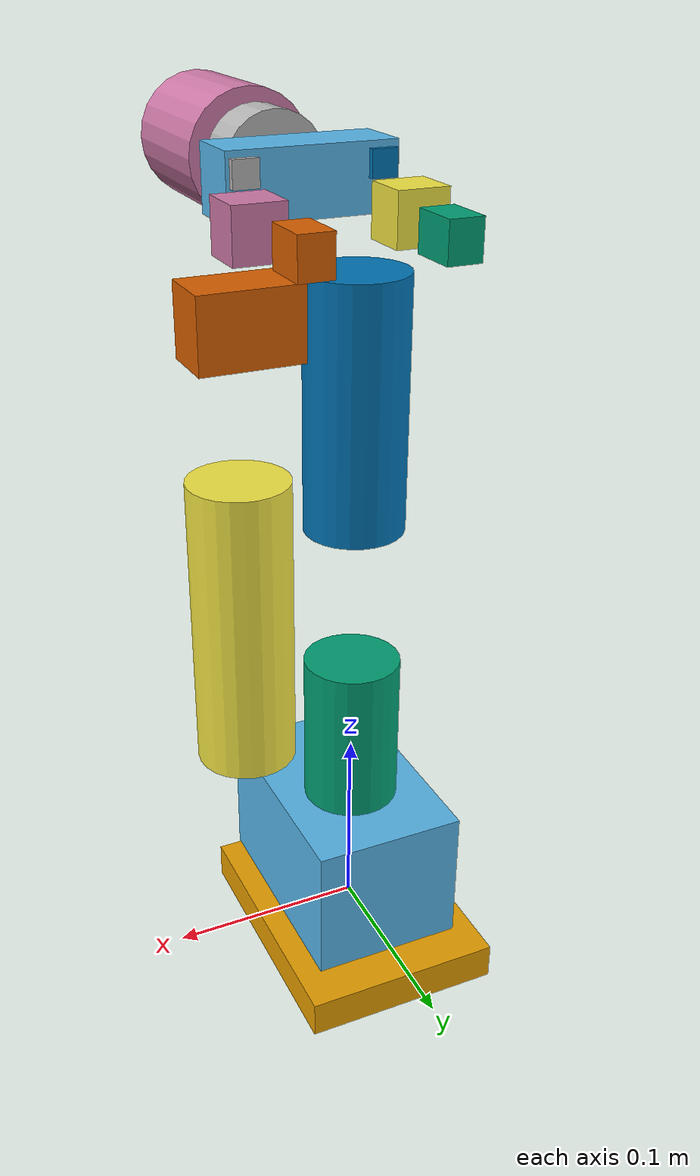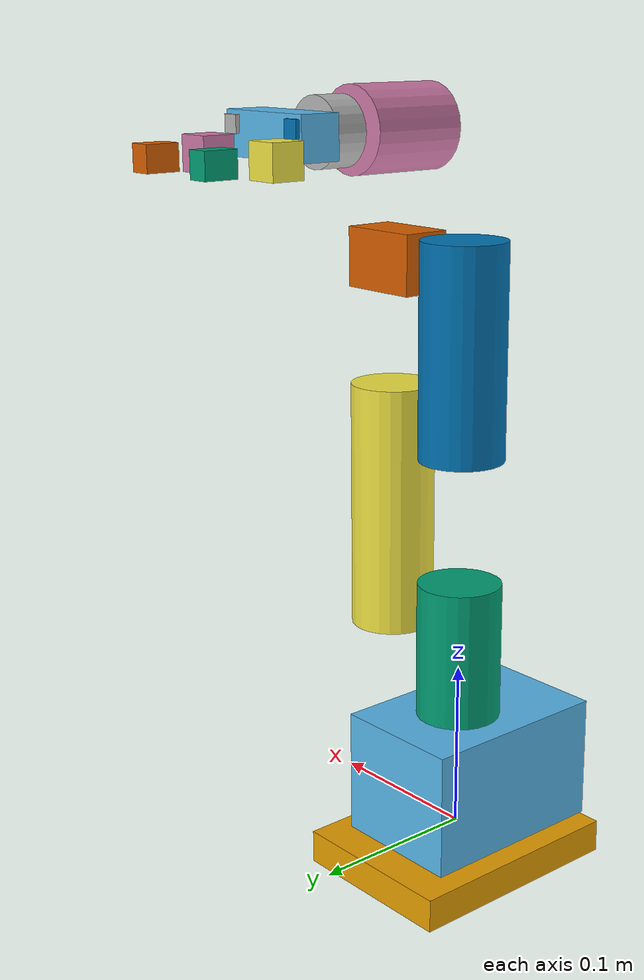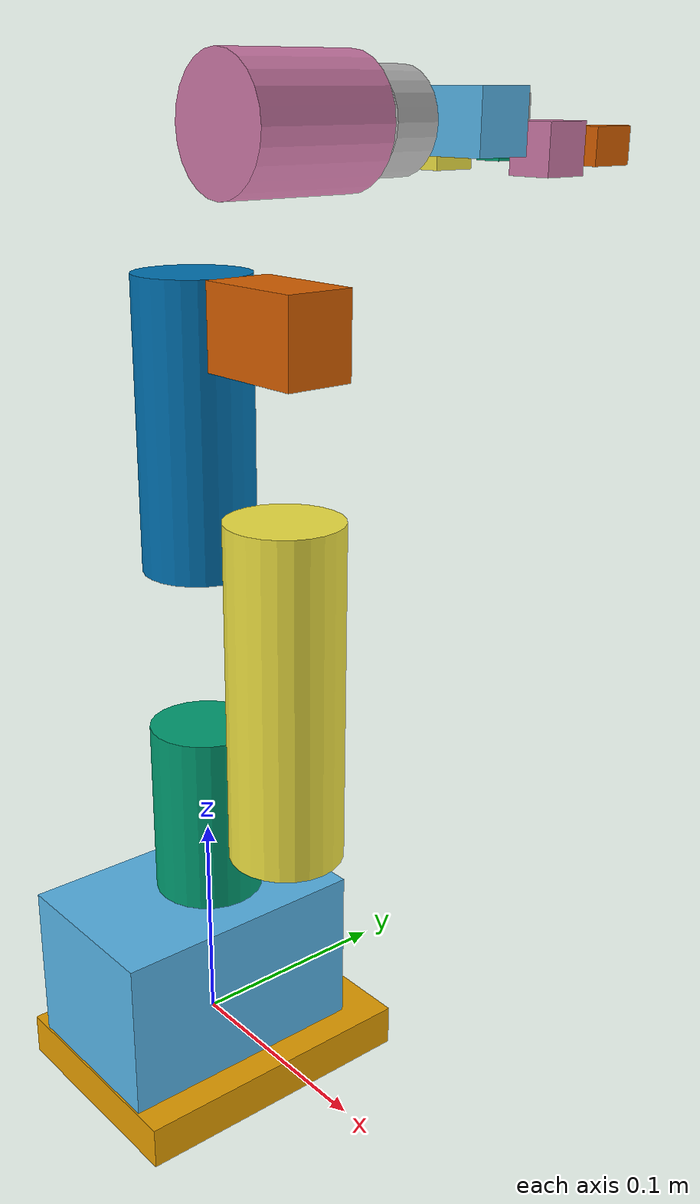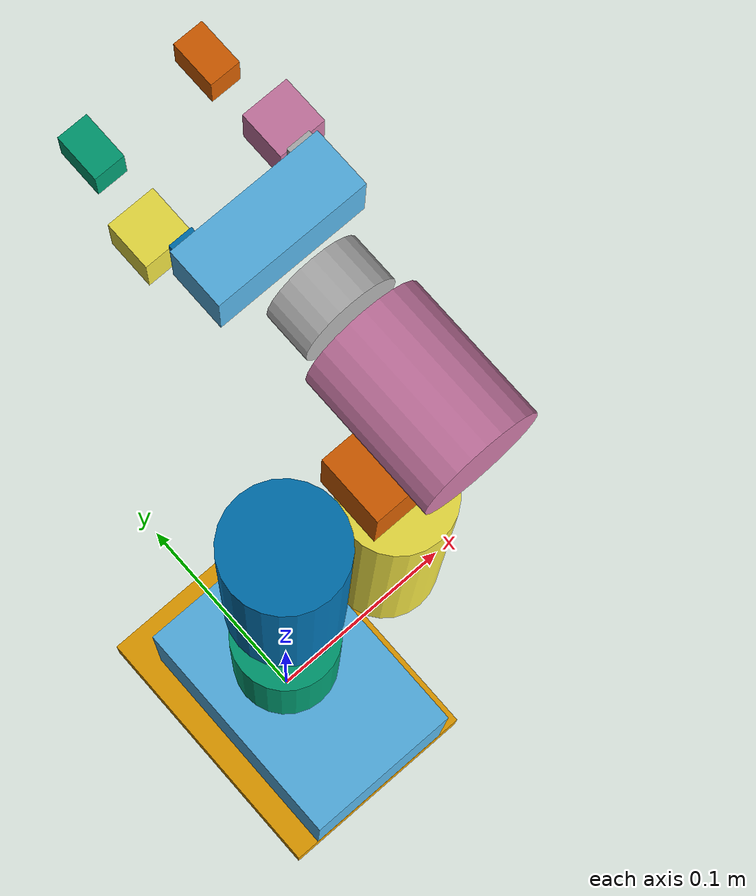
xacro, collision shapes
<?xml version="1.0"?>
<robot name="my_robot" xmlns:xacro="http://www.ros.org/wiki/xacro">

    <xacro:include filename="common_properties.xacro"/>
    <xacro:include filename="arm.xacro"/>
    <xacro:include filename="gripper.xacro"/>
    <xacro:include filename="my_robot.ros2_control.xacro"/>
    <joint name="gripper_base_joint" type="fixed">
        <parent link="tool_link"/>
        <child link="gripper_base_link"/>
        <origin xyz="0 0 0.02" rpy="${pi/2} 0 0"/>
    </joint>
</robot>

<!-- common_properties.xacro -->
<robot xmlns:xacro="http://www.ros.org/wiki/xacro">

    <material name="grey">
        <color rgba="0.5 0.5 0.5 1" />
    </material>
    <material name="blue">
        <color rgba="0 0 0.5 1"/>
    </material>
    <material name="dark_green">
        <color rgba="0 0.4 0 1"/>
    </material>

    <material name="light_green">
        <color rgba="0 0.6 0 1"/>
    </material>
</robot>

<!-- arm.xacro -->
<robot xmlns:xacro="http://www.ros.org/wiki/xacro">

    <link name="pre_base_link">
        <visual>
                <geometry>
                    <mesh filename="file://$(find my_robot_description)/meshes/g_shape_base_v2_0/visual/base_link.dae"/>
                </geometry>
                <origin xyz="0.0 0 -0.03" rpy="0 0 ${pi/2}"/>
            </visual>
            <collision>
                <geometry>
                    <box size="0.105 0.14 0.02"/>
                </geometry>
                <origin xyz="0.0 0.0 -0.015" rpy="0 0 0"/>
            </collision>
    </link>
    <link name="base_link">
        <visual>
        <geometry>
          <mesh filename="file://$(find my_robot_description)/meshes/mycobot_280/visual/link1.dae"/>
        </geometry>
        <origin xyz="0.0 0 0" rpy="0 0 ${-pi/2}"/>
      </visual>
      <collision>
        <geometry>
          <box size="0.08 0.12 0.075"/>
        </geometry>
        <origin xyz="0.0 -0.01 0.034" rpy="0 0 0"/>
      </collision>
    </link>

    <link name="shoulder_link">
        <visual>
        <geometry>
          <mesh filename="file://$(find my_robot_description)/meshes/mycobot_280/visual/link2.dae"/>
        </geometry>
        <origin xyz="0.0 0 -0.06096" rpy="0 0 ${-pi/2}"/>
      </visual>
      <collision>
        <geometry>
          <cylinder radius="0.025" length="0.085"/>
        </geometry>
        <origin xyz="0.0 0 -0.02" rpy="0 0 ${-pi/2}"/>
      </collision>
    </link>

    <link name="arm_link">
        <visual>
        <geometry>
          <mesh filename="file://$(find my_robot_description)/meshes/mycobot_280/visual/link3.dae"/>
        </geometry>
        <origin xyz="0.0 0 0.03256" rpy="0 ${-pi/2} 0"/>
      </visual>
      <collision>
        <geometry>
          <cylinder radius="0.025" length="0.15"/>
        </geometry>
        <origin xyz="-0.058 0 0.059" rpy="0 ${-pi/2} 0"/>
      </collision>
    </link>

    <link name="elbow_link">
        <visual>
        <geometry>
          <mesh filename="file://$(find my_robot_description)/meshes/mycobot_280/visual/link4.dae"/>
        </geometry>
        <origin xyz="0.0 0 0.03056" rpy="0 ${-pi/2} 0"/>
      </visual>
      <collision>
        <geometry>
          <cylinder radius="0.025" length="0.125"/>
        </geometry>
        <origin xyz="-0.05 0 0.0" rpy="0 ${-pi/2} 0"/>
      </collision>
    </link>

    <link name="forearm_link">
        <visual>
        <geometry>
          <mesh filename="file://$(find my_robot_description)/meshes/mycobot_280/visual/link5.dae"/>
        </geometry>
        <origin xyz="0.0 0 -0.03356" rpy="${-pi/2} 0 0"/>
      </visual>
      <collision>
        <geometry>
          <box size="0.03 0.035 0.05"/>
        </geometry>
        <origin xyz="0.0 0 -0.005" rpy="0 0.0 0"/>
      </collision>
    </link>

    <link name="wrist_link">
        <visual>
        <geometry>
          <mesh filename="file://$(find my_robot_description)/meshes/mycobot_280/visual/link6.dae"/>
        </geometry>
        <origin xyz="0 0.00 -0.038" rpy="0 0 0"/>
      </visual>
      <collision>
        <geometry>
          <cylinder radius="0.025" length="0.06"/>
        </geometry>
        <origin xyz="0 0.00 0.0" rpy="${-pi/2} 0 0"/>
      </collision>
    </link>

    <link name="hand_link">
        <visual>
        <geometry>
          <mesh filename="file://$(find my_robot_description)/meshes/mycobot_280/visual/link7.dae"/>
        </geometry>
        <origin xyz="0.0 0 -0.012" rpy="0 0 0"/>
      </visual>
      <collision>
        <geometry>
          <cylinder radius="0.02" length="0.02"/>
        </geometry>
        <origin xyz="0 0.00 0.0" rpy="0 0 0"/>
      </collision>
    </link>

    <link name="tool_link">
    </link>

    <joint name="joint0" type="fixed">
        <parent link="pre_base_link" />
        <child link="base_link"/>
        <origin xyz="0 0 0" rpy="0 0 0"/>
    </joint>

    <joint name="joint1" type="revolute">
        <parent link="base_link" />
        <child link="shoulder_link"/>
        <origin xyz="0 0 0.13156" rpy="0 0 ${pi/2}"/>
        <axis xyz="0 0 1" />
        <limit effort="1000.0" velocity="1.0" lower="-2.879793" upper="2.879793" />
    </joint>

    <joint name="joint2" type="revolute">
        <parent link="shoulder_link" />
        <child link="arm_link"/>
        <origin xyz="0 0 -0.001" rpy="0 ${pi/2} ${-pi/2}"/>
        <axis xyz="0 0 1" />
        <limit effort="1000.0" velocity="1.0" lower="-2.879793" upper="2.879793" />
    </joint>

    <joint name="joint3" type="revolute">
        <parent link="arm_link" />
        <child link="elbow_link"/>
        <origin xyz="-0.1104 0 0" rpy="0 0 0"/>
        <axis xyz="0 0 1" />
        <limit effort="1000.0" velocity="1.0" lower="-2.879793" upper="2.879793" />
    </joint>

    <joint name="joint4" type="revolute">
        <parent link="elbow_link" />
        <child link="forearm_link"/>
        <origin xyz="-0.096 0 0.06062" rpy="0 0 ${-pi/2}"/>
        <axis xyz="0 0 1" />
        <limit effort="1000.0" velocity="1.0" lower="-2.879793" upper="2.879793" />
    </joint>

    <joint name="joint5" type="revolute">
        <parent link="forearm_link" />
        <child link="wrist_link"/>
        <origin xyz="0 -0.07318 0" rpy="${pi/2} ${-pi/2} 0"/>
        <axis xyz="0 0 1" />
        <limit effort="1000.0" velocity="1.0" lower="-2.879793" upper="2.879793" />
    </joint>

    <joint name="joint6" type="revolute">
        <parent link="wrist_link" />
        <child link="hand_link"/>
        <origin xyz="0 0.0456 0" rpy="${-pi/2} 0 0"/>
        <axis xyz="0 0 1" />
        <limit effort="1000.0" velocity="1.0" lower="-3.05" upper="3.05" />
    </joint>

    <joint name="hand_tool_joint" type="fixed">
        <parent link="hand_link" />
        <child link="tool_link"/>
        <origin xyz="0 0 0.012" rpy="0 0 0"/>
    </joint>
</robot>

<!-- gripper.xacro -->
<robot xmlns:xacro="http://www.ros.org/wiki/xacro" >

    <link name="gripper_base_link">
        <visual>
        <geometry>
          <mesh filename="file://$(find my_robot_description)/meshes/adaptive_gripper/visual/gripper_base.dae"/>
        </geometry>
        <origin xyz="0.0 0.0 -0.012" rpy="0 0 0"/>
      </visual>
      <collision>
        <geometry>
          <box size="0.065 0.025 0.025"/>
        </geometry>
        <origin xyz="0.0 0.0 0.0" rpy="0 0 0"/>
      </collision>
    </link>

    <link name="gripper_left1">
      <visual>
        <geometry>
          <mesh filename="file://$(find my_robot_description)/meshes/adaptive_gripper/visual/gripper_left1.dae"/>
        </geometry>
        <origin xyz="0.039 -0.0133 -0.012" rpy="0 0 0"/>
      </visual>
      <collision>
        <geometry>
          <box size="0.013 0.02 0.015"/>
        </geometry>
        <origin xyz="0.013 0.042 -0.010" rpy="0 0 0"/>
      </collision>
    </link>

    <link name="gripper_left2">
      <visual>
        <geometry>
          <mesh filename="file://$(find my_robot_description)/meshes/adaptive_gripper/visual/gripper_left2.dae"/>
        </geometry>
        <origin xyz="0.005 -0.0195 -0.012" rpy="0 0 0"/>
      </visual>
      <collision>
        <geometry>
          <box size="0.02 0.02 0.02"/>
        </geometry>
        <origin xyz="-0.025 0.0 -0.010" rpy="0 0 0"/>
      </collision>
    </link>

    <link name="gripper_left3">
      <visual>
        <geometry>
          <mesh filename="file://$(find my_robot_description)/meshes/adaptive_gripper/visual/gripper_left3.dae"/>
        </geometry>
        <origin xyz="0.012 0.0025 -0.012" rpy="0 0 0"/>
      </visual>
      <collision>
        <geometry>
          <box size="0.01 0.01 0.01"/>
        </geometry>
        <origin xyz="-0.014 0.005 0.005" rpy="0 0 0"/>
      </collision>
    </link>

    <link name="gripper_right1">
      <visual>
        <geometry>
          <mesh filename="file://$(find my_robot_description)/meshes/adaptive_gripper/visual/gripper_right1.dae"/>
        </geometry>
        <origin xyz="-0.039 -0.0133 -0.012" rpy="0 0 0"/>
      </visual>
      <collision>
        <geometry>
          <box size="0.013 0.02 0.015"/>
        </geometry>
        <origin xyz="-0.013 0.042 -0.010" rpy="0 0 0"/>
      </collision>
    </link>

    <link name="gripper_right2">
      <visual>
        <geometry>
          <mesh filename="file://$(find my_robot_description)/meshes/adaptive_gripper/visual/gripper_right2.dae"/>
        </geometry>
        <origin xyz="-0.005 -0.0195 -0.012" rpy="0 0 0"/>
      </visual>
      <collision>
        <geometry>
          <box size="0.02 0.02 0.02"/>
        </geometry>
        <origin xyz="0.025 0.0 -0.010" rpy="0 0 0"/>
      </collision>
    </link>

    <link name="gripper_right3">
      <visual>
        <geometry>
          <mesh filename="file://$(find my_robot_description)/meshes/adaptive_gripper/visual/gripper_right3.dae"/>
        </geometry>
        <origin xyz="-0.012 0.0025 -0.012" rpy="0 0 0"/>
      </visual>
      <collision>
        <geometry>
          <box size="0.01 0.01 0.01"/>
        </geometry>
        <origin xyz="0.014 0.005 0.005" rpy="0 0 0"/>
      </collision>
    </link>

    <joint name="gripper_control" type="revolute">
      <axis xyz="0 0 1"/>
      <limit effort="1000.0" lower="-0.7" upper="0.15" velocity="1.0"/>
      <parent link="gripper_base_link"/>
      <child link="gripper_left3"/>
      <origin xyz="-0.012 0.005 0" rpy="0 0 0"/>
    </joint>

    <joint name="gripper_base_to_gripper_left2" type="revolute">
      <axis xyz="0 0 1"/>
      <limit effort="1000.0" lower="-0.8" upper="0.5" velocity="1.0"/>
      <parent link="gripper_base_link"/>
      <child link="gripper_left2"/>
      <origin xyz="-0.005 0.027 0" rpy="0 0 0"/>
      <mimic joint="gripper_control" multiplier="1.0" offset="0"/>
    </joint>

    <joint name="gripper_left3_to_gripper_left1" type="revolute">
      <axis xyz="0 0 1"/>
      <limit effort="1000.0" lower="-0.5" upper="0.7" velocity="1.0"/>
      <parent link="gripper_left3"/>
      <child link="gripper_left1"/>
      <origin xyz="-0.027 0.016 0" rpy="0 0 0"/>
      <mimic joint="gripper_control" multiplier="-1.0" offset="0"/>
    </joint>

    <joint name="gripper_base_to_gripper_right3" type="revolute">
      <axis xyz="0 0 1"/>
      <limit effort="1000.0" lower="-0.15" upper="0.7" velocity="1.0"/>
      <parent link="gripper_base_link"/>
      <child link="gripper_right3"/>
      <origin xyz="0.012 0.005 0" rpy="0 0 0"/>
      <mimic joint="gripper_control" multiplier="-1.0" offset="0"/>
    </joint>

    <joint name="gripper_base_to_gripper_right2" type="revolute">
      <axis xyz="0 0 1"/>
      <limit effort="1000.0" lower="-0.5" upper="0.8" velocity="1.0"/>
      <parent link="gripper_base_link"/>
      <child link="gripper_right2"/>
      <origin xyz="0.005 0.027 0" rpy="0 0 0"/>
      <mimic joint="gripper_control" multiplier="-1.0" offset="0"/>
    </joint>

    <joint name="gripper_right3_to_gripper_right1" type="revolute">
      <axis xyz="0 0 1"/>
      <limit effort="1000.0" lower="-0.7" upper="0.5" velocity="1.0"/>
      <parent link="gripper_right3"/>
      <child link="gripper_right1"/>
      <origin xyz="0.027 0.016 0" rpy="0 0 0"/>
      <mimic joint="gripper_control" multiplier="1.0" offset="0"/>
    </joint>
</robot>
